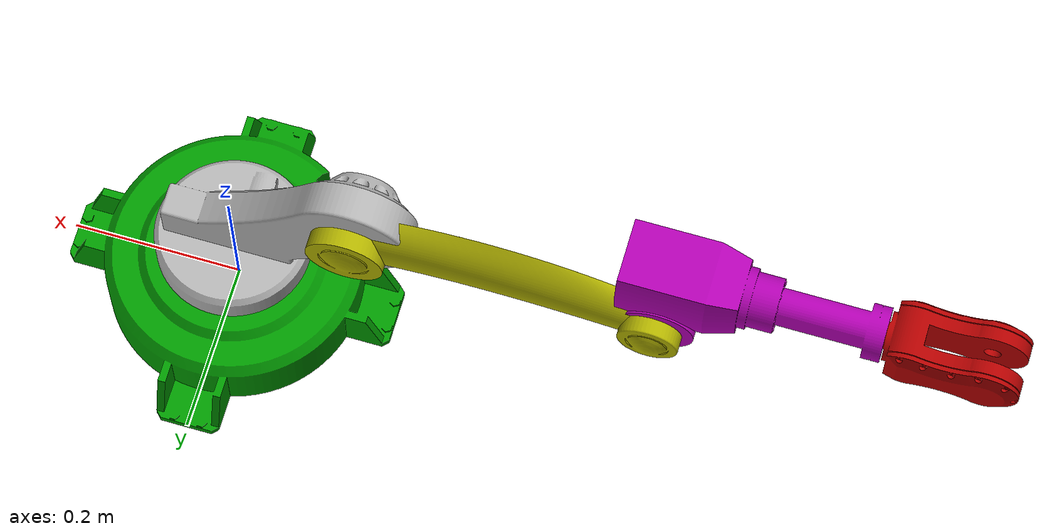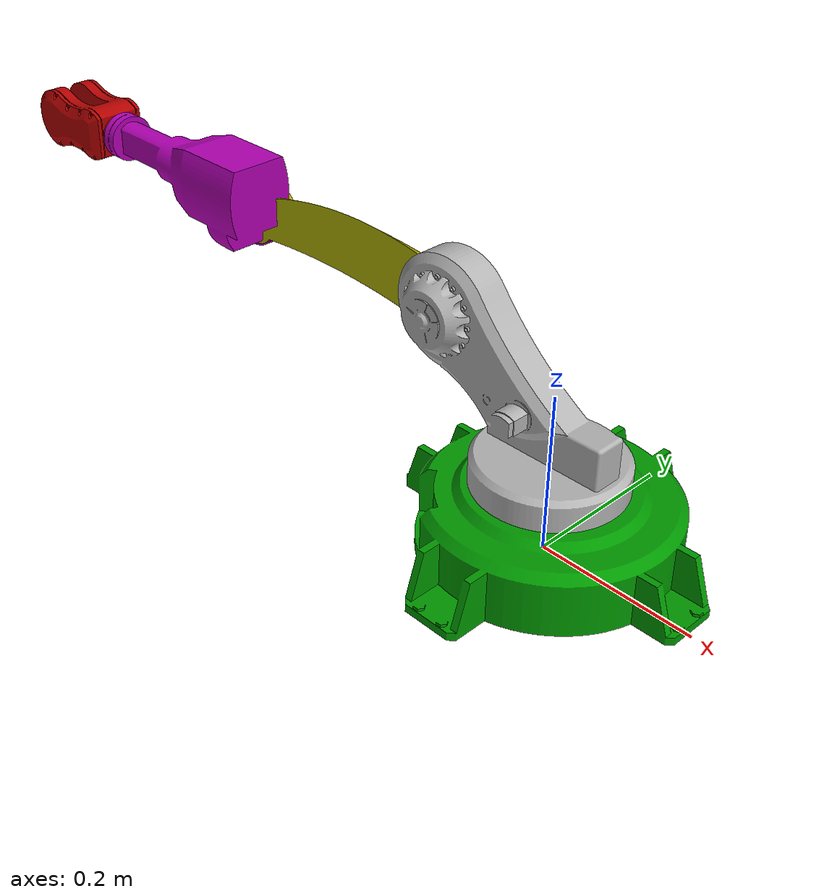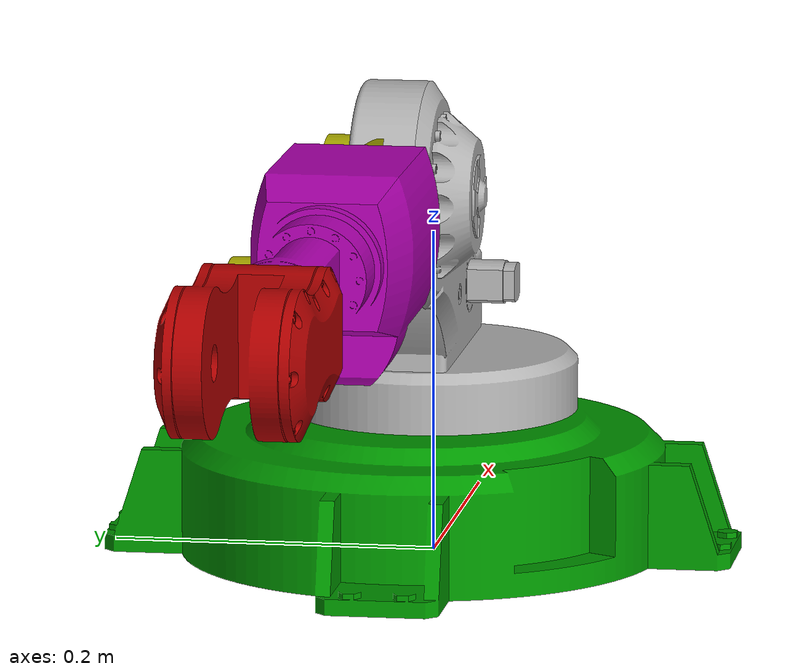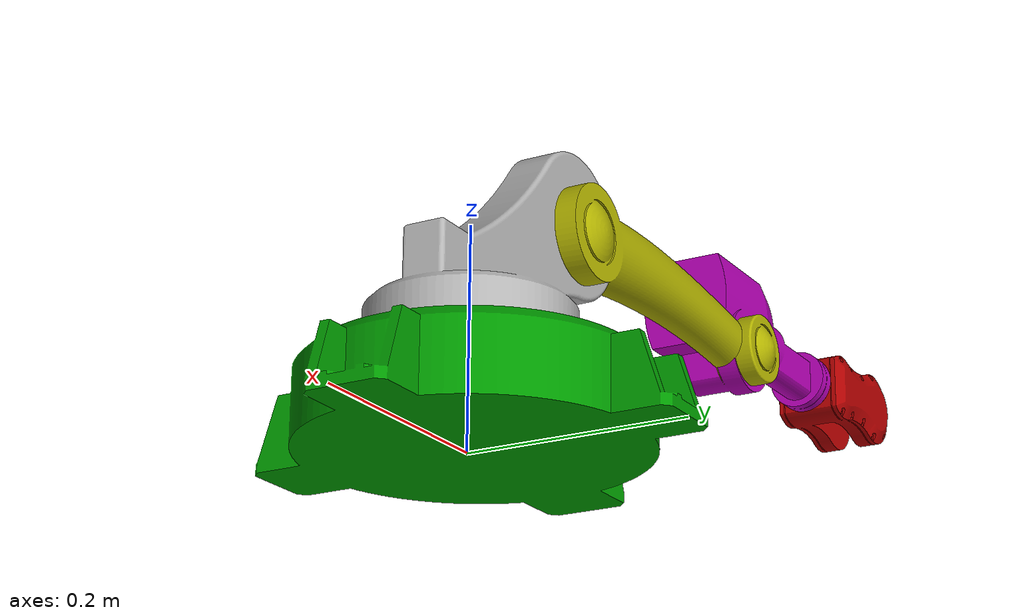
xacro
<?xml version="1.0"?>
<robot name="braxionas" xmlns:xacro="http://www.ros.org/wiki/xacro">

   <material name="green">
       <color  rgba="0 0.6 0 1" />
   </material>

    <material name="grey">
       <color rgba="0.7 0.7 0.7 1" />
    </material>

    <material name="grey1">
       <color rgba="0.7 0.7 0 1" />
    </material>

    <material name="grey2">
       <color rgba="0.7 0 0.7 1" />
    </material>

    <material name="grey3">
       <color rgba="0.7 0 0 1" />
    </material>

    <link name="base_footprint"/>

    <xacro:macro name="kommatia" params="fakelos onoma x y z xrvma rpyx  rpyy">
       <link name ="${onoma}">
        <visual>
            <geometry>
               <mesh filename ="package://braxionas/meshes/${fakelos}/${onoma}" scale="0.001 0.001 0.001" />
            </geometry>
            <origin xyz="${x} ${y} ${z}" rpy="${rpyx} ${rpyy} 0"/>
            <material name="${xrvma}" />
        </visual>
        <collision>
            <geometry>
               <mesh filename ="package://braxionas/meshes/${fakelos}/${onoma}" scale="0.001 0.001 0.001" />
            </geometry>
            <origin xyz="${x} ${y} ${z}" rpy="${rpyx} ${rpyy} 0"/>
        </collision>
       </link>
    </xacro:macro>

    <xacro:kommatia fakelos="bases" onoma="base.stl" x="0"  y="-0.3" z="-0.1" xrvma="green" rpyx="${pi/2}" rpyy="0"/>

    <xacro:kommatia fakelos="joints" onoma="jaw1.stl" x="0" y="0.26" z="-0.1" xrvma="grey"  rpyx="${pi/2}" rpyy="0"/>
    <xacro:kommatia fakelos="joints" onoma="jaw2.stl" x="0" y="0" z="0" xrvma="grey1" rpyx="0" rpyy="0"/>
    <xacro:kommatia fakelos="joints" onoma="jaw3.stl" x="-0.4" y="0" z="0.05" xrvma="grey2"  rpyx="${pi/2}"  rpyy="0"/>
    <xacro:kommatia fakelos="joints" onoma="jaw4.stl" x="0.3" y="-0.23" z="0" xrvma="grey3"  rpyx="${pi/2}"  rpyy="0"/>

    <joint name="base_joint" type="fixed">
        <parent link="base_footprint" />
        <child link ="base.stl" />

        <origin xyz ="0 0 0.1" rpy="0 0 0" />
    </joint>

    <joint name="base_jaw1" type="continuous">
      <parent link="base.stl" />
      <child link="jaw1.stl" />
      <origin xyz="0 0 0.09" rpy="0 0 0" />
      <axis xyz="0 0 1" />
    </joint>

    <joint name="jaw1_jaw2" type="continuous">
      <parent link="jaw1.stl" />
      <child link="jaw2.stl" />
      <origin xyz="-0.15 0 0.05" rpy="0 0 0" />
      <axis xyz="0 1 0" />
    </joint>

    <joint name="jaw2_jaw3" type="continuous">
      <parent link="jaw2.stl" />
      <child link="jaw3.stl" />
      <origin xyz="-0.35 -0.1 -0.002" rpy="0 0 0" />
      <axis xyz="0 1 0" />
    </joint>

        <joint name="jaw3_jaw4" type="continuous">
      <parent link="jaw3.stl" />
      <child link="jaw4.stl" />
      <origin xyz="-0.265 0.08 0.05" rpy="0 0 0" />
      <axis xyz="1 0 0" />
    </joint>

</robot>
